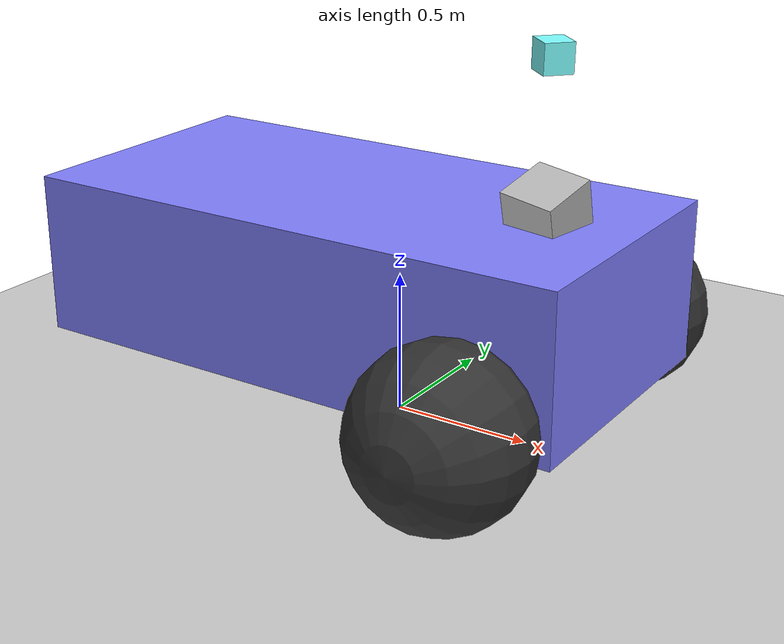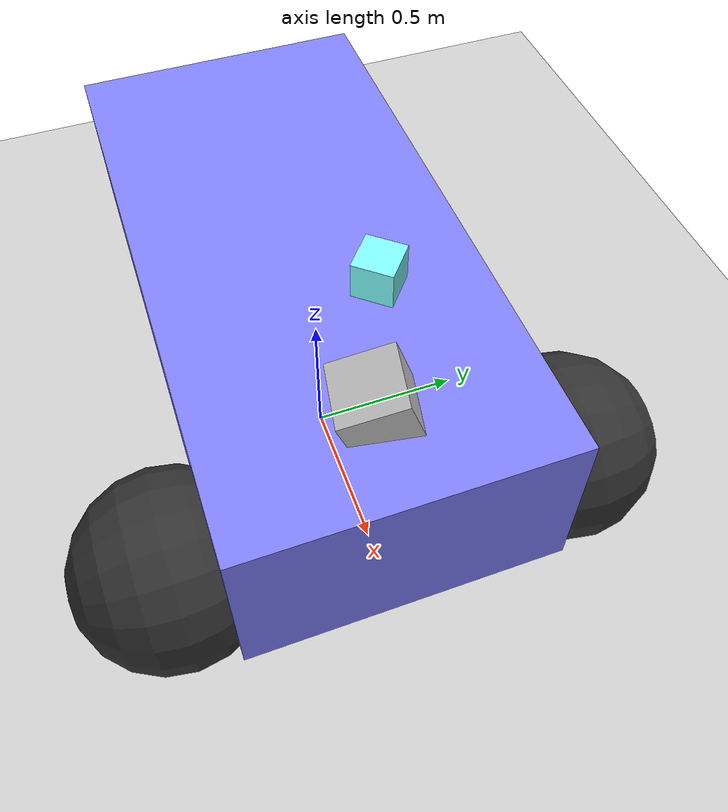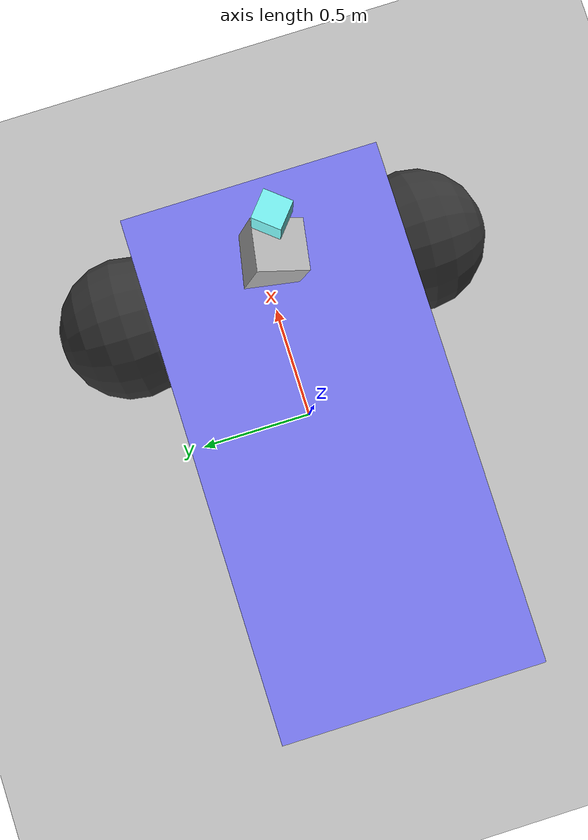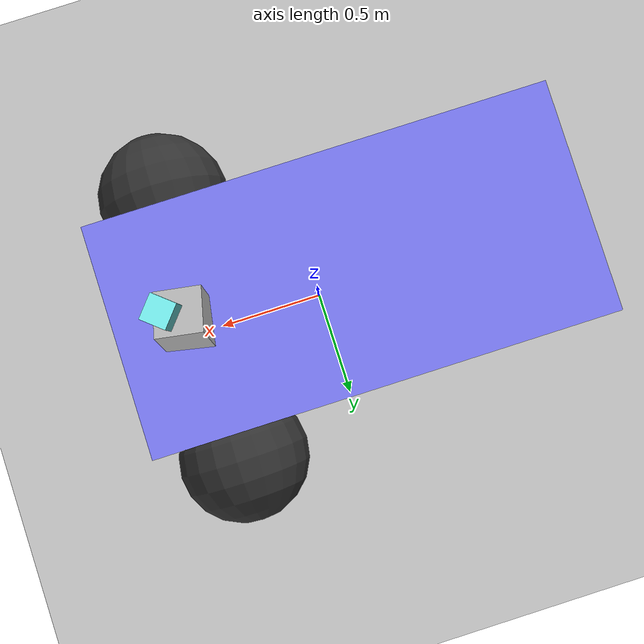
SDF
<?xml version="1.0"?>
<sdf version="1.6">
  <world name="diff_drive">

    <physics name="1ms" type="ignored">
      <max_step_size>0.001</max_step_size>
      <real_time_factor>1.0</real_time_factor>
    </physics>
    <plugin
      filename="ignition-gazebo-physics-system"
      name="ignition::gazebo::systems::Physics">
    </plugin>
    <plugin
      filename="ignition-gazebo-user-commands-system"
      name="ignition::gazebo::systems::UserCommands">
    </plugin>
    <plugin
      filename="ignition-gazebo-scene-broadcaster-system"
      name="ignition::gazebo::systems::SceneBroadcaster">
    </plugin>

    <plugin
      filename="ignition-gazebo-navsat-system"
      name="ignition::gazebo::systems::NavSat">
    </plugin>
    <plugin
      filename="ignition-gazebo-imu-system"
      name="ignition::gazebo::systems::Imu">
    </plugin>

    <spherical_coordinates>
      <surface_model>EARTH_WGS84</surface_model>
      <world_frame_orientation>ENU</world_frame_orientation>
      <latitude_deg>43.986687</latitude_deg>
      <longitude_deg>8.202501</longitude_deg>
      <elevation>0</elevation>
      <heading_deg>0</heading_deg>
    </spherical_coordinates>

    <light type="directional" name="sun">
      <cast_shadows>true</cast_shadows>
      <pose>0 0 10 0 0 0</pose>
      <diffuse>1 1 1 1</diffuse>
      <specular>0.5 0.5 0.5 1</specular>
      <attenuation>
        <range>1000</range>
        <constant>0.9</constant>
        <linear>0.01</linear>
        <quadratic>0.001</quadratic>
      </attenuation>
      <direction>-0.5 0.1 -0.9</direction>
    </light>

    <model name="ground_plane">
      <static>true</static>
      <link name="link">
        <collision name="collision">
          <geometry>
            <plane>
              <normal>0 0 1</normal>
              <size>100 100</size>
            </plane>
          </geometry>
        </collision>
        <visual name="visual">
          <geometry>
            <plane>
              <normal>0 0 1</normal>
              <size>100 100</size>
            </plane>
          </geometry>
          <material>
            <ambient>0.8 0.8 0.8 1</ambient>
            <diffuse>0.8 0.8 0.8 1</diffuse>
            <specular>0.8 0.8 0.8 1</specular>
          </material>
        </visual>
      </link>
    </model>

    <model name='vehicle_blue'>
      <pose>0 0 0.325 0 -0 0</pose>

      <link name="imu">
        <pose>0.554282 0 0.5 -0.1 0.3 -1.77</pose>
        <inertial>
          <mass>0.1</mass>
          <inertia>
            <ixx>0.000166667</ixx>
            <iyy>0.000166667</iyy>
            <izz>0.000166667</izz>
          </inertia>
        </inertial>
        <collision name="collision">
          <geometry>
            <box>
              <size>0.2 0.2 0.2</size>
            </box>
          </geometry>
        </collision>
        <visual name="visual">
          <geometry>
            <box>
              <size>0.2 0.2 0.2</size>
            </box>
          </geometry>
        </visual>
        <sensor name="imu" type="imu">
          <ignition_frame_id>imu_link</ignition_frame_id>
          <always_on>1</always_on>
          <update_rate>50</update_rate>
          <visualize>true</visualize>
          <topic>imu</topic>
        </sensor>
      </link>

      <link name="gnss">
        <pose>0.554282 0 1.0 0.3 1.6 -0.4</pose>
        <inertial>
          <mass>0.1</mass>
          <inertia>
            <ixx>0.000166667</ixx>
            <iyy>0.000166667</iyy>
            <izz>0.000166667</izz>
          </inertia>
        </inertial>
        <collision name="collision">
          <geometry>
            <box>
              <size>0.1 0.1 0.1</size>
            </box>
          </geometry>
        </collision>
        <visual name="visual">
          <geometry>
            <box>
              <size>0.1 0.1 0.1</size>
            </box>
          </geometry>
          <material>
            <ambient>0.5 1.0 1.0 1</ambient>
            <diffuse>0.5 1.0 1.0 1</diffuse>
            <specular>0.0 0.0 1.0 1</specular>
          </material>
        </visual>
        <sensor name="navsat" type="navsat">
          <ignition_frame_id>gnss_link</ignition_frame_id>
          <always_on>1</always_on>
          <update_rate>25</update_rate>
          <visualize>true</visualize>
          <topic>gps/fix</topic>
        </sensor>
      </link>

      <link name='chassis'>
        <pose>-0.151427 -0 0.175 0 -0 0</pose>
        <inertial>
          <mass>1.14395</mass>
          <inertia>
            <ixx>0.126164</ixx>
            <ixy>0</ixy>
            <ixz>0</ixz>
            <iyy>0.416519</iyy>
            <iyz>0</iyz>
            <izz>0.481014</izz>
          </inertia>
        </inertial>
        <visual name='visual'>
          <geometry>
            <box>
              <size>2.01142 1 0.568726</size>
            </box>
          </geometry>
          <material>
            <ambient>0.5 0.5 1.0 1</ambient>
            <diffuse>0.5 0.5 1.0 1</diffuse>
            <specular>0.0 0.0 1.0 1</specular>
          </material>
        </visual>
        <collision name='collision'>
          <geometry>
            <box>
              <size>2.01142 1 0.568726</size>
            </box>
          </geometry>
        </collision>
      </link>

      <link name='left_wheel'>
        <pose>0.554283 0.625029 -0.025 -1.5707 0 0</pose>
        <inertial>
          <mass>2</mass>
          <inertia>
            <ixx>0.145833</ixx>
            <ixy>0</ixy>
            <ixz>0</ixz>
            <iyy>0.145833</iyy>
            <iyz>0</iyz>
            <izz>0.125</izz>
          </inertia>
        </inertial>
        <visual name='visual'>
          <geometry>
            <sphere>
              <radius>0.3</radius>
            </sphere>
          </geometry>
          <material>
            <ambient>0.2 0.2 0.2 1</ambient>
            <diffuse>0.2 0.2 0.2 1</diffuse>
            <specular>0.2 0.2 0.2 1</specular>
          </material>
        </visual>
        <collision name='collision'>
          <geometry>
            <sphere>
              <radius>0.3</radius>
            </sphere>
          </geometry>
        </collision>
      </link>

      <link name='right_wheel'>
        <pose>0.554282 -0.625029 -0.025 -1.5707 0 0</pose>
        <inertial>
          <mass>2</mass>
          <inertia>
            <ixx>0.145833</ixx>
            <ixy>0</ixy>
            <ixz>0</ixz>
            <iyy>0.145833</iyy>
            <iyz>0</iyz>
            <izz>0.125</izz>
          </inertia>
        </inertial>
        <visual name='visual'>
          <geometry>
            <sphere>
              <radius>0.3</radius>
            </sphere>
          </geometry>
          <material>
            <ambient>0.2 0.2 0.2 1</ambient>
            <diffuse>0.2 0.2 0.2 1</diffuse>
            <specular>0.2 0.2 0.2 1</specular>
          </material>
        </visual>
        <collision name='collision'>
          <geometry>
            <sphere>
              <radius>0.3</radius>
            </sphere>
          </geometry>
        </collision>
      </link>

      <link name='caster'>
        <pose>-0.957138 -0 -0.125 0 -0 0</pose>
        <inertial>
          <mass>1</mass>
          <inertia>
            <ixx>0.1</ixx>
            <ixy>0</ixy>
            <ixz>0</ixz>
            <iyy>0.1</iyy>
            <iyz>0</iyz>
            <izz>0.1</izz>
          </inertia>
        </inertial>
        <visual name='visual'>
          <geometry>
            <sphere>
              <radius>0.2</radius>
            </sphere>
          </geometry>
          <material>
            <ambient>0.2 0.2 0.2 1</ambient>
            <diffuse>0.2 0.2 0.2 1</diffuse>
            <specular>0.2 0.2 0.2 1</specular>
          </material>
        </visual>
        <collision name='collision'>
          <geometry>
            <sphere>
              <radius>0.2</radius>
            </sphere>
          </geometry>
        </collision>
      </link>

      <joint name='imu_joint' type='fixed'>
        <parent>chassis</parent>
        <child>imu</child>
        <axis>
          <xyz>0 0 1</xyz>
        </axis>
      </joint>

      <joint name='gnss_joint' type='fixed'>
        <parent>chassis</parent>
        <child>gnss</child>
        <axis>
          <xyz>0 0 1</xyz>
        </axis>
      </joint>

      <joint name='left_wheel_joint' type='revolute'>
        <parent>chassis</parent>
        <child>left_wheel</child>
        <axis>
          <xyz>0 0 1</xyz>
          <limit>
            <lower>-1.79769e+308</lower>
            <upper>1.79769e+308</upper>
          </limit>
        </axis>
      </joint>

      <joint name='right_wheel_joint' type='revolute'>
        <parent>chassis</parent>
        <child>right_wheel</child>
        <axis>
          <xyz>0 0 1</xyz>
          <limit>
            <lower>-1.79769e+308</lower>
            <upper>1.79769e+308</upper>
          </limit>
        </axis>
      </joint>

      <joint name='caster_wheel' type='ball'>
        <parent>chassis</parent>
        <child>caster</child>
      </joint>

      <plugin
        filename="ignition-gazebo-diff-drive-system"
        name="ignition::gazebo::systems::DiffDrive">
        <left_joint>left_wheel_joint</left_joint>
        <right_joint>right_wheel_joint</right_joint>
        <wheel_separation>1.25</wheel_separation>
        <wheel_radius>0.3</wheel_radius>
        <odom_publish_frequency>1</odom_publish_frequency>
        <topic>cmd_vel</topic>
        <max_linear_acceleration>1</max_linear_acceleration>
        <min_linear_acceleration>-1</min_linear_acceleration>
        <max_angular_acceleration>2</max_angular_acceleration>
        <min_angular_acceleration>-2</min_angular_acceleration>
        <max_linear_velocity>0.5</max_linear_velocity>
        <min_linear_velocity>-0.5</min_linear_velocity>
        <max_angular_velocity>1</max_angular_velocity>
        <min_angular_velocity>-1</min_angular_velocity>
      </plugin>

    </model>

  </world>
</sdf>
